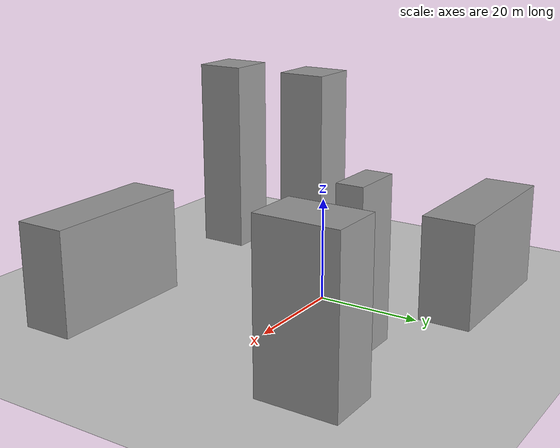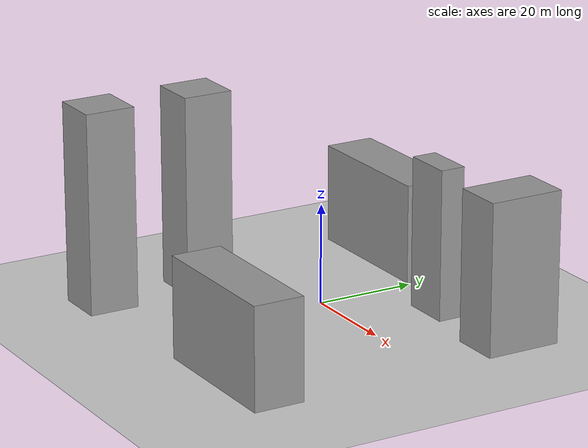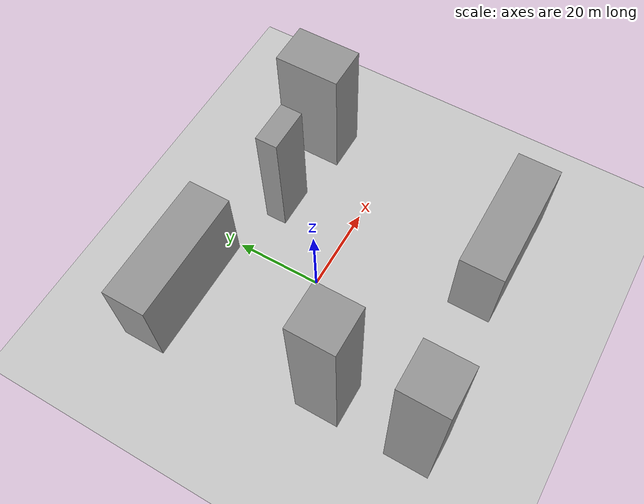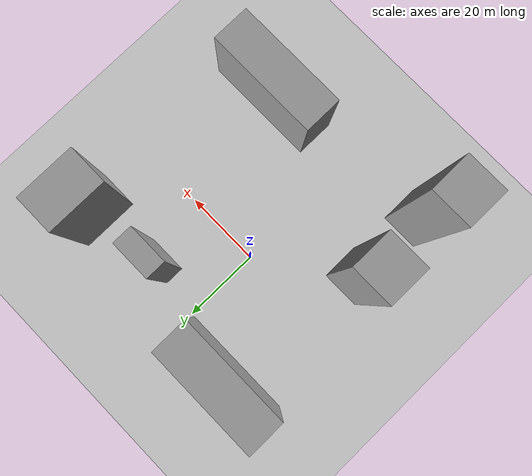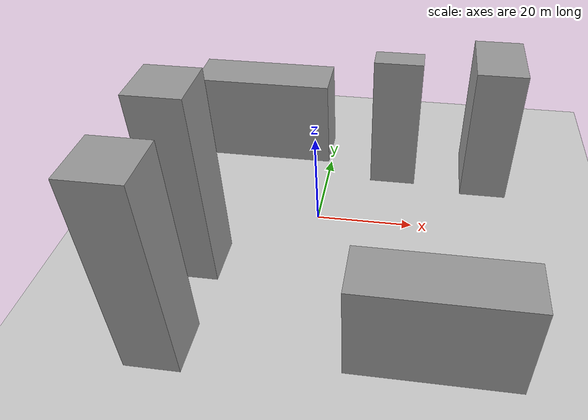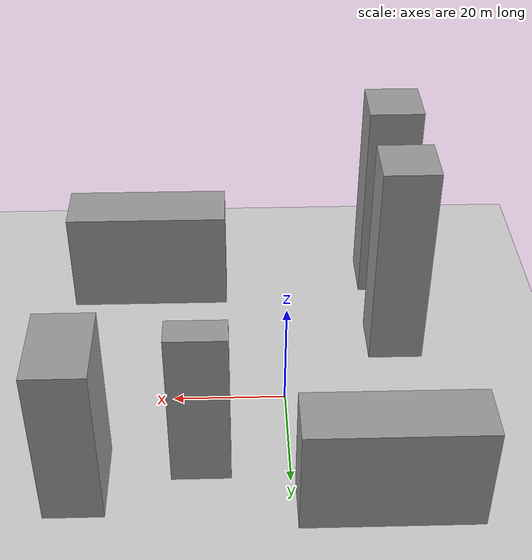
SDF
<sdf version="1.6">
 <world name="default">
  <light name="sun" type="directional">
   <pose>0 0 10 0 -0 0</pose>
   <diffuse>0.8 0.8 0.8 1</diffuse>
   <specular>0.2 0.2 0.2 1</specular>
   <attenuation>
    <range>1000</range>
    <constant>0.9</constant>
    <linear>0.01</linear>
    <quadratic>0.001</quadratic>
   </attenuation>
   <direction>-0.5 0.1 -0.9</direction>
  </light>
  <model name="ground_plane">
   <static>1</static>
   <link name="link">
    <collision name="collision">
     <geometry><plane><normal>0 0 1</normal><size>100 100</size></plane></geometry>
     <surface><friction><ode><mu>100</mu><mu2>50</mu2></ode></friction></surface>
    </collision>
    <visual name="visual">
     <cast_shadows>0</cast_shadows>
     <geometry><plane><normal>0 0 1</normal><size>100 100</size></plane></geometry>
     <material>
      <script><uri>file://media/materials/scripts/gazebo.material</uri><name>Gazebo/Grey</name></script>
     </material>
    </visual>
   </link>
  </model>
  <physics name="default_physics" default="0" type="ode">
   <ode>
    <solver>
     <type>quick</type>
     <iters>10</iters>
     <sor>1.3</sor>
     <use_dynamic_moi_rescaling>0</use_dynamic_moi_rescaling>
    </solver>
    <constraints>
     <cfm>0</cfm>
     <erp>0.2</erp>
     <contact_max_correcting_vel>100</contact_max_correcting_vel>
     <contact_surface_layer>0.001</contact_surface_layer>
    </constraints>
   </ode>
   <max_step_size>0.004</max_step_size>
   <real_time_factor>1</real_time_factor>
   <real_time_update_rate>250</real_time_update_rate>
  </physics>
  <gravity>0 0 -9.8066</gravity>
  <magnetic_field>6e-06 2.3e-05 -4.2e-05</magnetic_field>
  <atmosphere type="adiabatic"/>
  <scene><ambient>0.4 0.4 0.4 1</ambient><background>0.7 0.7 0.7 1</background><shadows>1</shadows></scene>
  <spherical_coordinates>
   <surface_model>EARTH_WGS84</surface_model>
   <latitude_deg>0</latitude_deg>
   <longitude_deg>0</longitude_deg>
   <elevation>0</elevation>
   <heading_deg>0</heading_deg>
  </spherical_coordinates>
  <model name="building_1">
   <link name="link_2">
    <inertial>
     <mass>750000</mass>
     <inertia>
      <ixx>5.78125e+07</ixx>
      <ixy>0</ixy>
      <ixz>0</ixz>
      <iyy>6.25e+07</iyy>
      <iyz>0</iyz>
      <izz>7.8125e+06</izz>
     </inertia>
    </inertial>
    <pose>0 0 15 0 -0 0</pose>
    <visual name="visual">
     <geometry><box><size>10 5 30</size></box></geometry>
     <material>
      <lighting>1</lighting>
      <script><uri>file://media/materials/scripts/gazebo.material</uri><name>Gazebo/Grey</name></script>
      <shader type="pixel"><normal_map>__default__</normal_map></shader>
      <ambient>0.3 0.3 0.3 1</ambient>
      <diffuse>0.7 0.7 0.7 1</diffuse>
      <specular>0.01 0.01 0.01 1</specular>
      <emissive>0 0 0 1</emissive>
     </material>
    </visual>
    <collision name="collision">
     <geometry><box><size>10 5 30</size></box></geometry>
     <surface>
      <friction>
       <ode><mu>1</mu><mu2>1</mu2><fdir1>0 0 0</fdir1><slip1>0</slip1><slip2>0</slip2></ode>
       <torsional>
        <coefficient>1</coefficient>
        <patch_radius>0</patch_radius>
        <surface_radius>0</surface_radius>
        <use_patch_radius>1</use_patch_radius>
        <ode><slip>0</slip></ode>
       </torsional>
      </friction>
      <bounce><restitution_coefficient>0</restitution_coefficient><threshold>1e+06</threshold></bounce>
      <contact>
       <collide_without_contact>0</collide_without_contact>
       <collide_without_contact_bitmask>1</collide_without_contact_bitmask>
       <collide_bitmask>1</collide_bitmask>
       <ode>
        <soft_cfm>0</soft_cfm>
        <soft_erp>0.2</soft_erp>
        <kp>1e+13</kp>
        <kd>1</kd>
        <max_vel>0.01</max_vel>
        <min_depth>0</min_depth>
       </ode>
       <bullet>
        <split_impulse>1</split_impulse>
        <split_impulse_penetration_threshold>-0.01</split_impulse_penetration_threshold>
        <soft_cfm>0</soft_cfm>
        <soft_erp>0.2</soft_erp>
        <kp>1e+13</kp>
        <kd>1</kd>
       </bullet>
      </contact>
     </surface>
    </collision>
   </link>
   <static>1</static>
   <pose>14.8446 16.7315 0 0 -0 0</pose>
  </model>
  <model name="building_3">
   <link name="link_2">
    <inertial>
     <mass>3e+06</mass>
     <inertia>
      <ixx>1.25e+08</ixx>
      <ixy>0</ixy>
      <ixz>0</ixz>
      <iyy>3.25e+08</iyy>
      <iyz>0</iyz>
      <izz>2.5e+08</izz>
     </inertia>
    </inertial>
    <pose>0 0 10 0 -0 0</pose>
    <visual name="visual">
     <geometry><box><size>30 10 20</size></box></geometry>
     <material>
      <lighting>1</lighting>
      <script><uri>file://media/materials/scripts/gazebo.material</uri><name>Gazebo/Grey</name></script>
      <shader type="pixel"><normal_map>__default__</normal_map></shader>
      <ambient>0.3 0.3 0.3 1</ambient>
      <diffuse>0.7 0.7 0.7 1</diffuse>
      <specular>0.01 0.01 0.01 1</specular>
      <emissive>0 0 0 1</emissive>
     </material>
    </visual>
    <collision name="collision">
     <geometry><box><size>30 10 20</size></box></geometry>
     <surface>
      <friction>
       <ode><mu>1</mu><mu2>1</mu2><fdir1>0 0 0</fdir1><slip1>0</slip1><slip2>0</slip2></ode>
       <torsional>
        <coefficient>1</coefficient>
        <patch_radius>0</patch_radius>
        <surface_radius>0</surface_radius>
        <use_patch_radius>1</use_patch_radius>
        <ode><slip>0</slip></ode>
       </torsional>
      </friction>
      <bounce><restitution_coefficient>0</restitution_coefficient><threshold>1e+06</threshold></bounce>
      <contact>
       <collide_without_contact>0</collide_without_contact>
       <collide_without_contact_bitmask>1</collide_without_contact_bitmask>
       <collide_bitmask>1</collide_bitmask>
       <ode>
        <soft_cfm>0</soft_cfm>
        <soft_erp>0.2</soft_erp>
        <kp>1e+13</kp>
        <kd>1</kd>
        <max_vel>0.01</max_vel>
        <min_depth>0</min_depth>
       </ode>
       <bullet>
        <split_impulse>1</split_impulse>
        <split_impulse_penetration_threshold>-0.01</split_impulse_penetration_threshold>
        <soft_cfm>0</soft_cfm>
        <soft_erp>0.2</soft_erp>
        <kp>1e+13</kp>
        <kd>1</kd>
       </bullet>
      </contact>
     </surface>
    </collision>
   </link>
   <static>1</static>
   <pose>-15.7517 25.0814 0 0 -0 0</pose>
  </model>
  <model name="building_4">
   <link name="link_2">
    <inertial>
     <mass>200000</mass>
     <inertia>
      <ixx>2.83333e+07</ixx>
      <ixy>0</ixy>
      <ixz>0</ixz>
      <iyy>2.83333e+07</iyy>
      <iyz>0</iyz>
      <izz>3.33333e+06</izz>
     </inertia>
    </inertial>
    <pose>0 0 20 0 -0 0</pose>
    <visual name="visual">
     <geometry><box><size>10 10 40</size></box></geometry>
     <material>
      <lighting>1</lighting>
      <script><uri>file://media/materials/scripts/gazebo.material</uri><name>Gazebo/Grey</name></script>
      <shader type="pixel"><normal_map>__default__</normal_map></shader>
      <ambient>0.3 0.3 0.3 1</ambient>
      <diffuse>0.7 0.7 0.7 1</diffuse>
      <specular>0.01 0.01 0.01 1</specular>
      <emissive>0 0 0 1</emissive>
     </material>
    </visual>
    <collision name="collision">
     <geometry><box><size>10 10 40</size></box></geometry>
     <surface>
      <friction>
       <ode><mu>1</mu><mu2>1</mu2><fdir1>0 0 0</fdir1><slip1>0</slip1><slip2>0</slip2></ode>
       <torsional>
        <coefficient>1</coefficient>
        <patch_radius>0</patch_radius>
        <surface_radius>0</surface_radius>
        <use_patch_radius>1</use_patch_radius>
        <ode><slip>0</slip></ode>
       </torsional>
      </friction>
      <bounce><restitution_coefficient>0</restitution_coefficient><threshold>1e+06</threshold></bounce>
      <contact>
       <collide_without_contact>0</collide_without_contact>
       <collide_without_contact_bitmask>1</collide_without_contact_bitmask>
       <collide_bitmask>1</collide_bitmask>
       <ode>
        <soft_cfm>0</soft_cfm>
        <soft_erp>0.2</soft_erp>
        <kp>1e+13</kp>
        <kd>1</kd>
        <max_vel>0.01</max_vel>
        <min_depth>0</min_depth>
       </ode>
       <bullet>
        <split_impulse>1</split_impulse>
        <split_impulse_penetration_threshold>-0.01</split_impulse_penetration_threshold>
        <soft_cfm>0</soft_cfm>
        <soft_erp>0.2</soft_erp>
        <kp>1e+13</kp>
        <kd>1</kd>
       </bullet>
      </contact>
     </surface>
    </collision>
   </link>
   <static>1</static>
   <pose>-21.2186 -15.3348 0 0 -0 0</pose>
  </model>
  <model name="building_3_0">
   <link name="link_2">
    <inertial>
     <mass>3e+06</mass>
     <inertia>
      <ixx>1.25e+08</ixx>
      <ixy>0</ixy>
      <ixz>0</ixz>
      <iyy>3.25e+08</iyy>
      <iyz>0</iyz>
      <izz>2.5e+08</izz>
     </inertia>
    </inertial>
    <pose>0 0 10 0 -0 0</pose>
    <visual name="visual">
     <geometry><box><size>30 10 20</size></box></geometry>
     <material>
      <lighting>1</lighting>
      <script><uri>file://media/materials/scripts/gazebo.material</uri><name>Gazebo/Grey</name></script>
      <shader type="pixel"><normal_map>__default__</normal_map></shader>
      <ambient>0.3 0.3 0.3 1</ambient>
      <diffuse>0.7 0.7 0.7 1</diffuse>
      <specular>0.01 0.01 0.01 1</specular>
      <emissive>0 0 0 1</emissive>
     </material>
    </visual>
    <collision name="collision">
     <geometry><box><size>30 10 20</size></box></geometry>
     <surface>
      <friction>
       <ode><mu>1</mu><mu2>1</mu2><fdir1>0 0 0</fdir1><slip1>0</slip1><slip2>0</slip2></ode>
       <torsional>
        <coefficient>1</coefficient>
        <patch_radius>0</patch_radius>
        <surface_radius>0</surface_radius>
        <use_patch_radius>1</use_patch_radius>
        <ode><slip>0</slip></ode>
       </torsional>
      </friction>
      <bounce><restitution_coefficient>0</restitution_coefficient><threshold>1e+06</threshold></bounce>
      <contact>
       <collide_without_contact>0</collide_without_contact>
       <collide_without_contact_bitmask>1</collide_without_contact_bitmask>
       <collide_bitmask>1</collide_bitmask>
       <ode>
        <soft_cfm>0</soft_cfm>
        <soft_erp>0.2</soft_erp>
        <kp>1e+13</kp>
        <kd>1</kd>
        <max_vel>0.01</max_vel>
        <min_depth>0</min_depth>
       </ode>
       <bullet>
        <split_impulse>1</split_impulse>
        <split_impulse_penetration_threshold>-0.01</split_impulse_penetration_threshold>
        <soft_cfm>0</soft_cfm>
        <soft_erp>0.2</soft_erp>
        <kp>1e+13</kp>
        <kd>1</kd>
       </bullet>
      </contact>
     </surface>
    </collision>
   </link>
   <static>1</static>
   <pose>25.3926 -32.7333 0 0 -0 0</pose>
  </model>
  <model name="building_4_0">
   <link name="link_2">
    <inertial>
     <mass>200000</mass>
     <inertia>
      <ixx>2.83333e+07</ixx>
      <ixy>0</ixy>
      <ixz>0</ixz>
      <iyy>2.83333e+07</iyy>
      <iyz>0</iyz>
      <izz>3.33333e+06</izz>
     </inertia>
    </inertial>
    <pose>0 0 20 0 -0 0</pose>
    <visual name="visual">
     <geometry><box><size>10 10 40</size></box></geometry>
     <material>
      <lighting>1</lighting>
      <script><uri>file://media/materials/scripts/gazebo.material</uri><name>Gazebo/Grey</name></script>
      <shader type="pixel"><normal_map>__default__</normal_map></shader>
      <ambient>0.3 0.3 0.3 1</ambient>
      <diffuse>0.7 0.7 0.7 1</diffuse>
      <specular>0.01 0.01 0.01 1</specular>
      <emissive>0 0 0 1</emissive>
     </material>
    </visual>
    <collision name="collision">
     <geometry><box><size>10 10 40</size></box></geometry>
     <surface>
      <friction>
       <ode><mu>1</mu><mu2>1</mu2><fdir1>0 0 0</fdir1><slip1>0</slip1><slip2>0</slip2></ode>
       <torsional>
        <coefficient>1</coefficient>
        <patch_radius>0</patch_radius>
        <surface_radius>0</surface_radius>
        <use_patch_radius>1</use_patch_radius>
        <ode><slip>0</slip></ode>
       </torsional>
      </friction>
      <bounce><restitution_coefficient>0</restitution_coefficient><threshold>1e+06</threshold></bounce>
      <contact>
       <collide_without_contact>0</collide_without_contact>
       <collide_without_contact_bitmask>1</collide_without_contact_bitmask>
       <collide_bitmask>1</collide_bitmask>
       <ode>
        <soft_cfm>0</soft_cfm>
        <soft_erp>0.2</soft_erp>
        <kp>1e+13</kp>
        <kd>1</kd>
        <max_vel>0.01</max_vel>
        <min_depth>0</min_depth>
       </ode>
       <bullet>
        <split_impulse>1</split_impulse>
        <split_impulse_penetration_threshold>-0.01</split_impulse_penetration_threshold>
        <soft_cfm>0</soft_cfm>
        <soft_erp>0.2</soft_erp>
        <kp>1e+13</kp>
        <kd>1</kd>
       </bullet>
      </contact>
     </surface>
    </collision>
   </link>
   <static>1</static>
   <pose>-21.3096 -36.1097 0 0 -0 0</pose>
  </model>
  <model name="building_2">
   <link name="link_2">
    <inertial>
     <mass>2.25e+06</mass>
     <inertia>
      <ixx>2.10938e+08</ixx>
      <ixy>0</ixy>
      <ixz>0</ixz>
      <iyy>1.875e+08</iyy>
      <iyz>0</iyz>
      <izz>6.09375e+07</izz>
     </inertia>
    </inertial>
    <pose>-0 -0 15 0 -0 0</pose>
    <visual name="visual">
     <geometry><box><size>10 15 30</size></box></geometry>
     <material>
      <lighting>1</lighting>
      <script><uri>file://media/materials/scripts/gazebo.material</uri><name>Gazebo/Grey</name></script>
      <shader type="pixel"><normal_map>__default__</normal_map></shader>
      <ambient>0.3 0.3 0.3 1</ambient>
      <diffuse>0.7 0.7 0.7 1</diffuse>
      <specular>0.01 0.01 0.01 1</specular>
      <emissive>0 0 0 1</emissive>
     </material>
    </visual>
    <collision name="collision">
     <geometry><box><size>10 15 30</size></box></geometry>
     <surface>
      <friction>
       <ode><mu>1</mu><mu2>1</mu2><fdir1>0 0 0</fdir1><slip1>0</slip1><slip2>0</slip2></ode>
       <torsional>
        <coefficient>1</coefficient>
        <patch_radius>0</patch_radius>
        <surface_radius>0</surface_radius>
        <use_patch_radius>1</use_patch_radius>
        <ode><slip>0</slip></ode>
       </torsional>
      </friction>
      <bounce><restitution_coefficient>0</restitution_coefficient><threshold>1e+06</threshold></bounce>
      <contact>
       <collide_without_contact>0</collide_without_contact>
       <collide_without_contact_bitmask>1</collide_without_contact_bitmask>
       <collide_bitmask>1</collide_bitmask>
       <ode>
        <soft_cfm>0</soft_cfm>
        <soft_erp>0.2</soft_erp>
        <kp>1e+13</kp>
        <kd>1</kd>
        <max_vel>0.01</max_vel>
        <min_depth>0</min_depth>
       </ode>
       <bullet>
        <split_impulse>1</split_impulse>
        <split_impulse_penetration_threshold>-0.01</split_impulse_penetration_threshold>
        <soft_cfm>0</soft_cfm>
        <soft_erp>0.2</soft_erp>
        <kp>1e+13</kp>
        <kd>1</kd>
       </bullet>
      </contact>
     </surface>
    </collision>
   </link>
   <static>1</static>
   <pose>35.2177 19.4306 0 0 -0 0</pose>
  </model>
 </world>
</sdf>
